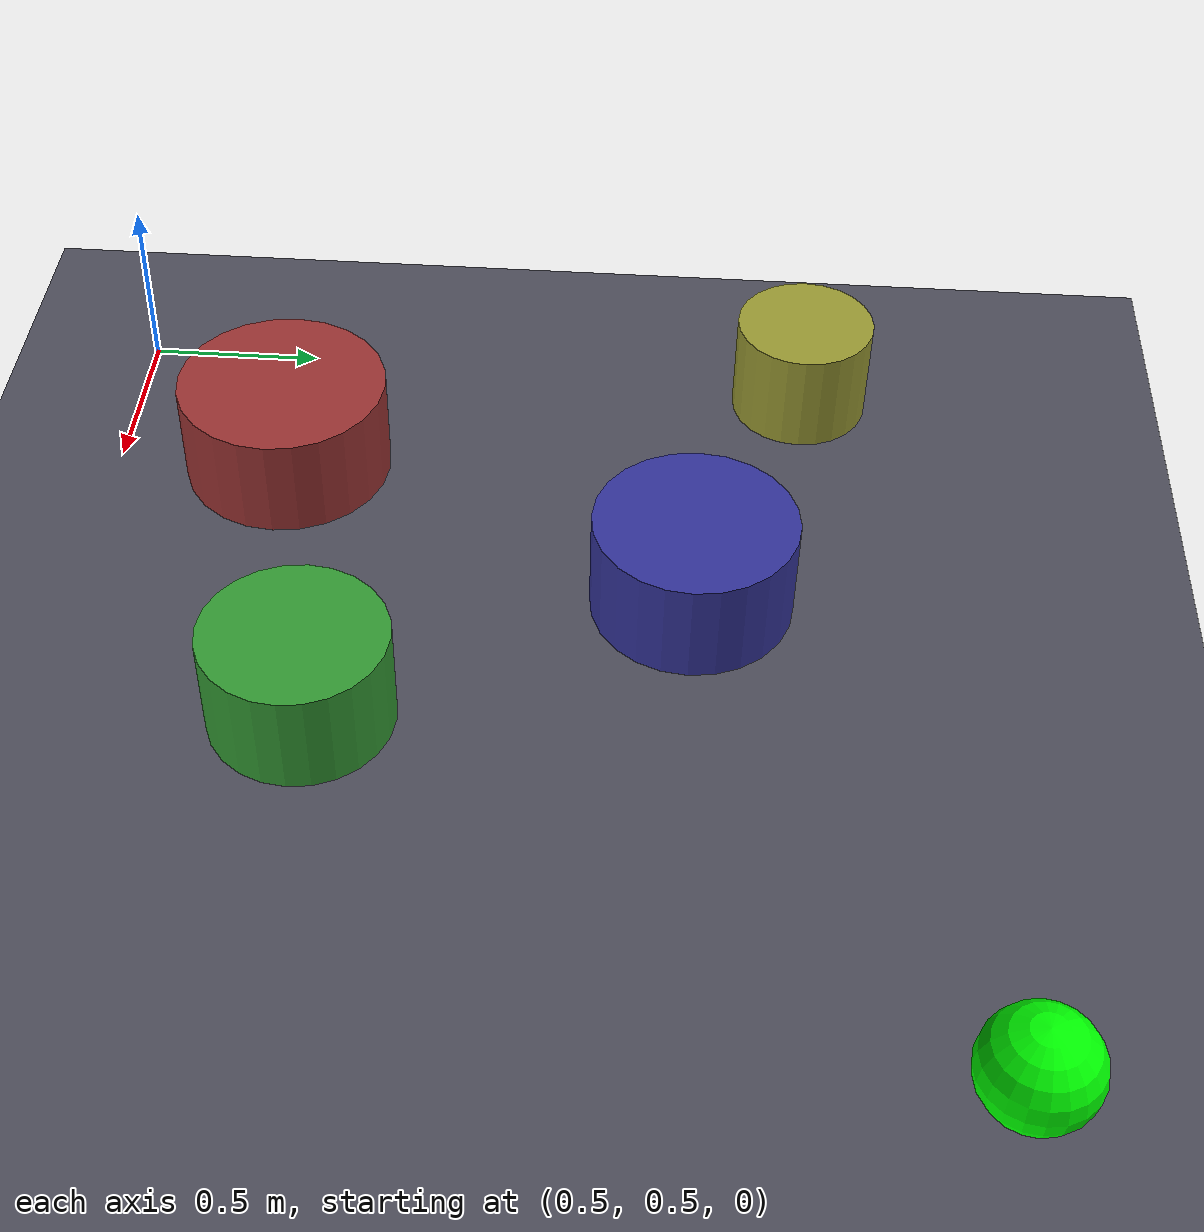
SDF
<?xml version="1.0" ?>
<sdf version="1.8">
  <world name="ethobot_world">
    <!-- Physics -->
    <physics name="1ms" type="ignored">
      <max_step_size>0.001</max_step_size>
      <real_time_factor>1.0</real_time_factor>
    </physics>

    <!-- Plugins -->
    <plugin filename="gz-sim-physics-system" name="gz::sim::systems::Physics"/>
    <plugin filename="gz-sim-user-commands-system" name="gz::sim::systems::UserCommands"/>
    <plugin filename="gz-sim-scene-broadcaster-system" name="gz::sim::systems::SceneBroadcaster"/>
    <plugin filename="gz-sim-sensors-system" name="gz::sim::systems::Sensors">
      <render_engine>ogre2</render_engine>
    </plugin>

    <!-- Lighting -->
    <light type="directional" name="sun">
      <cast_shadows>true</cast_shadows>
      <pose>0 0 10 0 0 0</pose>
      <diffuse>0.8 0.8 0.8 1</diffuse>
      <specular>0.2 0.2 0.2 1</specular>
      <attenuation>
        <range>1000</range>
        <constant>0.9</constant>
        <linear>0.01</linear>
        <quadratic>0.001</quadratic>
      </attenuation>
      <direction>-0.5 0.1 -0.9</direction>
    </light>

    <!-- Ground Plane -->
    <model name="ground_plane">
      <static>true</static>
      <link name="link">
        <collision name="collision">
          <geometry>
            <plane>
              <normal>0 0 1</normal>
              <size>20 20</size>
            </plane>
          </geometry>
        </collision>
        <visual name="visual">
          <geometry>
            <plane>
              <normal>0 0 1</normal>
              <size>20 20</size>
            </plane>
          </geometry>
          <material>
            <ambient>0.3 0.3 0.35 1</ambient>
            <diffuse>0.3 0.3 0.35 1</diffuse>
          </material>
        </visual>
      </link>
    </model>

    <!-- Obstacle 1: at (1.0, 1.0), radius 0.3 - scaled for TurtleBot3 -->
    <model name="obstacle_1">
      <static>true</static>
      <pose>1.0 1.0 0.15 0 0 0</pose>
      <link name="link">
        <collision name="collision">
          <geometry>
            <cylinder>
              <radius>0.3</radius>
              <length>0.3</length>
            </cylinder>
          </geometry>
        </collision>
        <visual name="visual">
          <geometry>
            <cylinder>
              <radius>0.3</radius>
              <length>0.3</length>
            </cylinder>
          </geometry>
          <material>
            <ambient>0.6 0.2 0.2 1</ambient>
            <diffuse>0.6 0.2 0.2 1</diffuse>
          </material>
        </visual>
      </link>
    </model>

    <!-- Obstacle 2: at (2.0, 1.2), radius 0.25 -->
    <model name="obstacle_2">
      <static>true</static>
      <pose>2.0 1.2 0.15 0 0 0</pose>
      <link name="link">
        <collision name="collision">
          <geometry>
            <cylinder>
              <radius>0.25</radius>
              <length>0.3</length>
            </cylinder>
          </geometry>
        </collision>
        <visual name="visual">
          <geometry>
            <cylinder>
              <radius>0.25</radius>
              <length>0.3</length>
            </cylinder>
          </geometry>
          <material>
            <ambient>0.2 0.6 0.2 1</ambient>
            <diffuse>0.2 0.6 0.2 1</diffuse>
          </material>
        </visual>
      </link>
    </model>

    <!-- Obstacle 3: at (1.5, 2.2), radius 0.28 -->
    <model name="obstacle_3">
      <static>true</static>
      <pose>1.5 2.2 0.15 0 0 0</pose>
      <link name="link">
        <collision name="collision">
          <geometry>
            <cylinder>
              <radius>0.28</radius>
              <length>0.3</length>
            </cylinder>
          </geometry>
        </collision>
        <visual name="visual">
          <geometry>
            <cylinder>
              <radius>0.28</radius>
              <length>0.3</length>
            </cylinder>
          </geometry>
          <material>
            <ambient>0.2 0.2 0.6 1</ambient>
            <diffuse>0.2 0.2 0.6 1</diffuse>
          </material>
        </visual>
      </link>
    </model>

    <!-- Obstacle 4: at (0.6, 2.5), radius 0.2 -->
    <model name="obstacle_4">
      <static>true</static>
      <pose>0.6 2.5 0.15 0 0 0</pose>
      <link name="link">
        <collision name="collision">
          <geometry>
            <cylinder>
              <radius>0.2</radius>
              <length>0.3</length>
            </cylinder>
          </geometry>
        </collision>
        <visual name="visual">
          <geometry>
            <cylinder>
              <radius>0.2</radius>
              <length>0.3</length>
            </cylinder>
          </geometry>
          <material>
            <ambient>0.6 0.6 0.2 1</ambient>
            <diffuse>0.6 0.6 0.2 1</diffuse>
          </material>
        </visual>
      </link>
    </model>

    <!-- Goal marker at (3, 3) -->
    <model name="goal_marker">
      <static>true</static>
      <pose>3 3 0.1 0 0 0</pose>
      <link name="link">
        <visual name="visual">
          <geometry>
            <sphere>
              <radius>0.15</radius>
            </sphere>
          </geometry>
          <material>
            <ambient>0.0 1.0 0.0 1</ambient>
            <diffuse>0.0 1.0 0.0 1</diffuse>
            <emissive>0.0 0.5 0.0 1</emissive>
          </material>
        </visual>
      </link>
    </model>

  </world>
</sdf>
